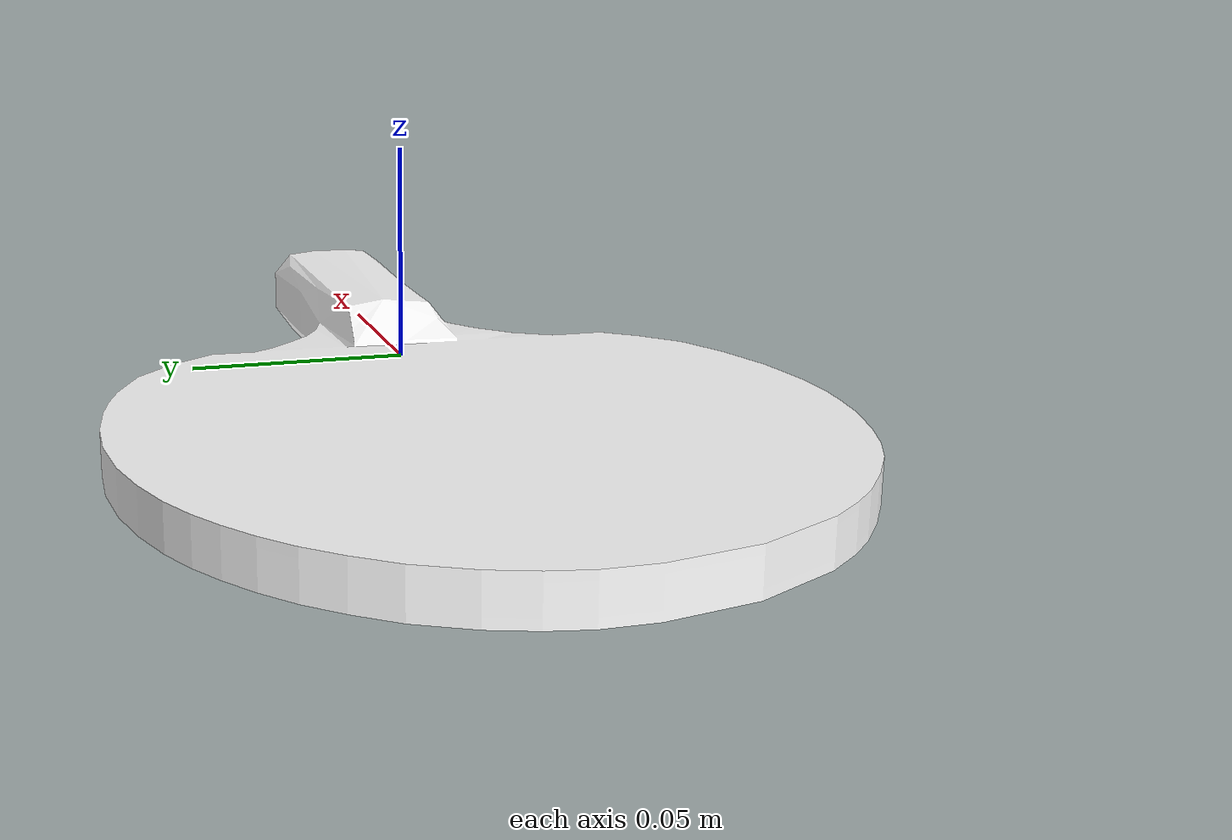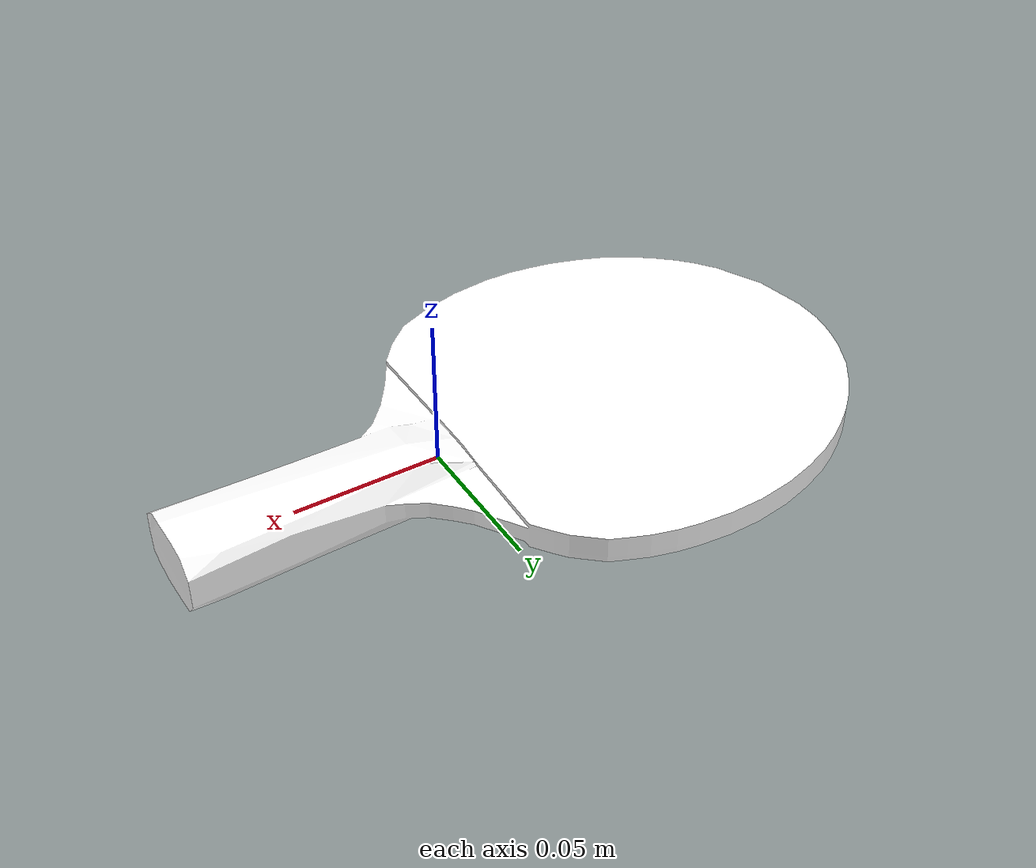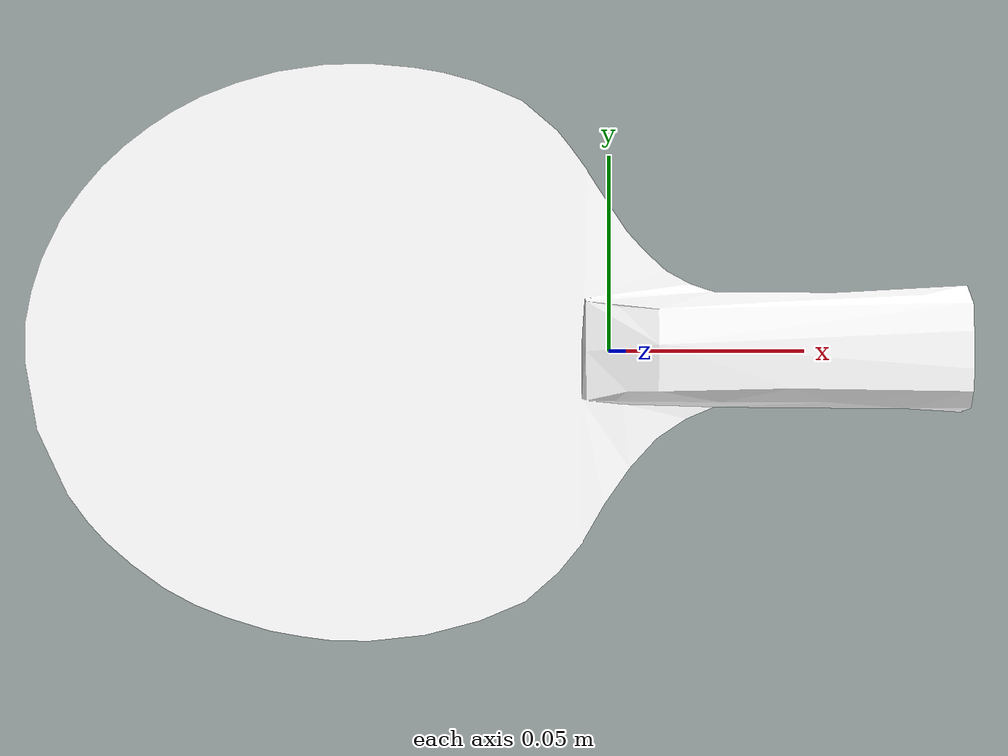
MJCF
<mujoco model="ping_pong_paddle">
    <asset>
        <!-- Ping Pong Paddle mesh and texture -->
        <mesh name="ping_pong_paddle_mesh" file="Ping_Pong_Paddle.obj" />
        <texture name="paddle_tex" type="2d" file="paddle_1k.png"/>
        <material name="paddle_mat" texture="paddle_tex" specular="0.2" shininess="0.4"/>
    </asset>

    <worldbody>
        <!-- Ping Pong Paddle geom -->
        <geom name="ping_pong_paddle" type="mesh" mesh="ping_pong_paddle_mesh"
              material="paddle_mat" rgba="1 1 1 1"
              pos="0 0 0" euler="0 0 0"/>
    </worldbody>
</mujoco>
